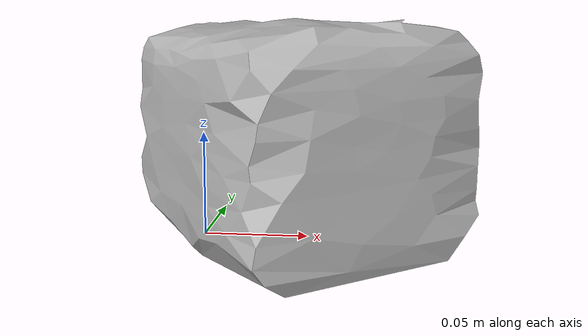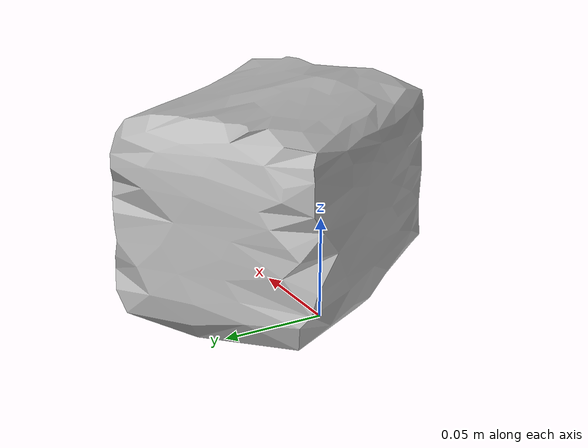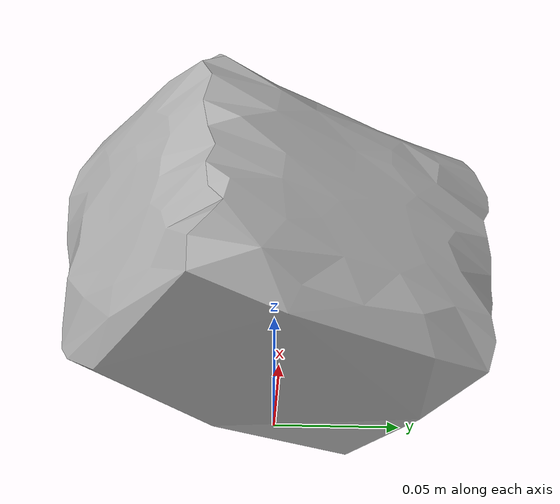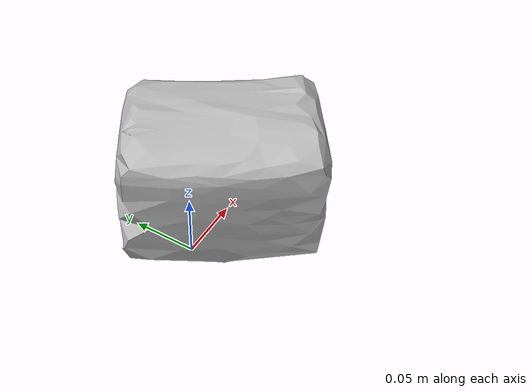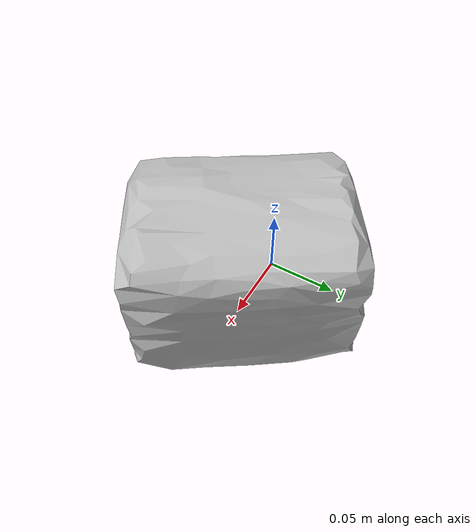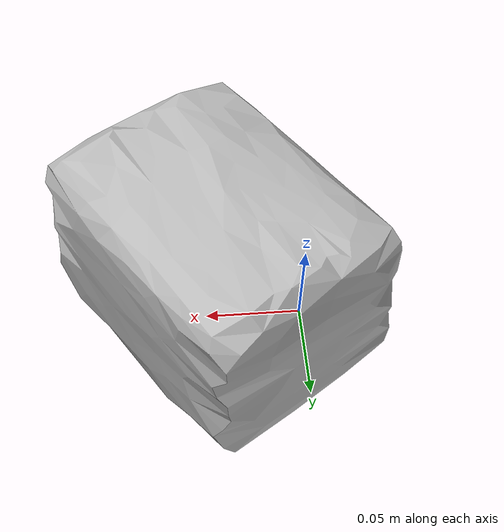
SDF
<?xml version="1.0" ?>
<sdf version="1.4">
  <model name="genuine_joe_plastic_stir_sticks">
    <link name="genuine_joe_plastic_stir_sticks_link">
      <inertial>
        <pose>0 0 0 0 0 0</pose>
        <mass>0.08</mass>
      </inertial>

      <visual name="genuine_joe_plastic_stir_sticks_visual">
        <pose>0 0 0 0 0 0</pose>
        <material>
          <script>
            <uri>model://genuine_joe_plastic_stir_sticks/materials/scripts</uri>
            <uri>model://genuine_joe_plastic_stir_sticks/materials/textures</uri>
            <name>genuine_joe_plastic_stir_sticks</name>
          </script>
        </material>
        <geometry>
          <mesh>
            <uri>model://genuine_joe_plastic_stir_sticks/meshes/genuine_joe_plastic_stir_sticks.dae</uri>
          </mesh>
        </geometry>
      </visual>

      <collision name="genuine_joe_plastic_stir_sticks_collision">
        <pose>0 0 0 0 0 0</pose>
        <geometry>
          <mesh>
            <uri>model://genuine_joe_plastic_stir_sticks/meshes/genuine_joe_plastic_stir_sticks.dae</uri>
          </mesh>
        </geometry>
        <surface>
          <friction>
            <ode>
              <mu>0.8</mu>
              <mu2>0.8</mu2>
            </ode>
          </friction>
        </surface>
      </collision>

    </link>
  </model>
</sdf>
